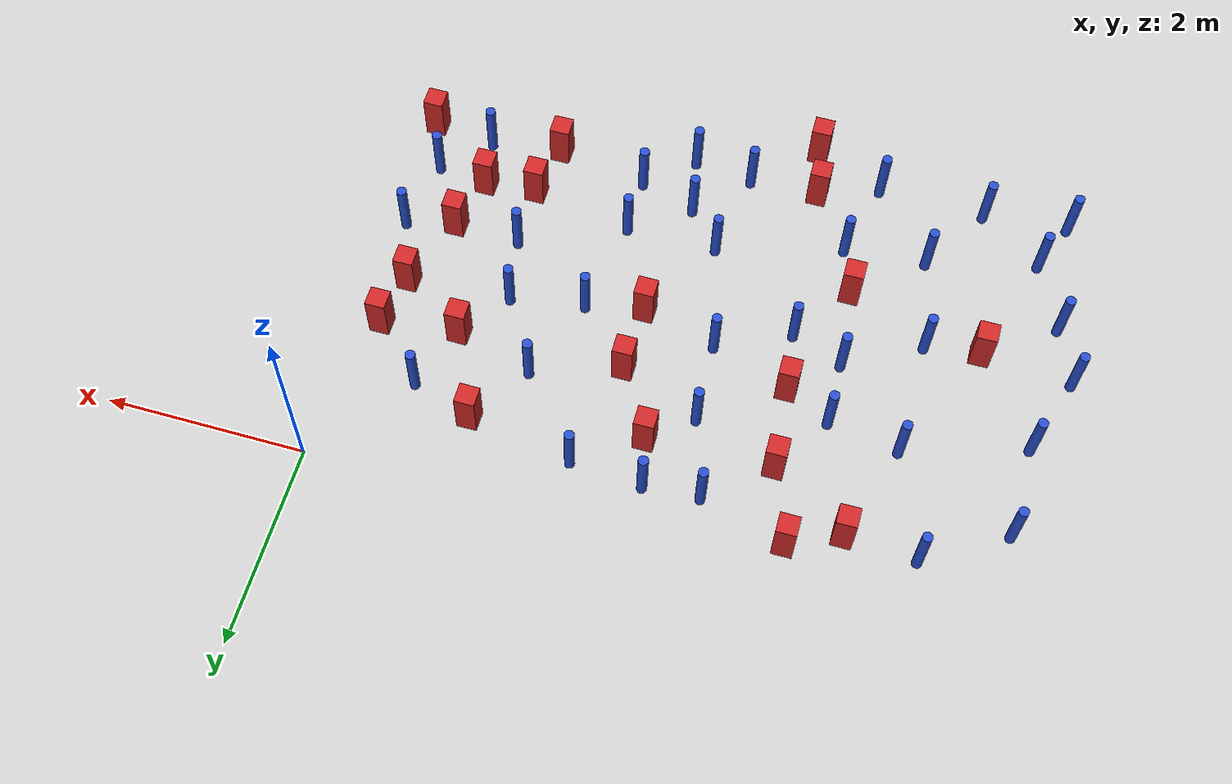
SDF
<sdf version="1.6">
 <world name="default">
  <model name="ground_plane">
   <static>1</static>
   <link name="link">
    <collision name="collision">
     <geometry><plane><normal>0 0 1</normal><size>100 100</size></plane></geometry>
     <surface><friction><ode><mu>100</mu><mu2>50</mu2></ode></friction></surface>
    </collision>
    <visual name="visual">
     <cast_shadows>0</cast_shadows>
     <geometry><plane><normal>0 0 1</normal><size>100 100</size></plane></geometry>
     <material>
      <ambient>1.0 1.0 1.0 1.0</ambient>
      <diffuse>0.8 0.8 0.8 1.0</diffuse>
      <specular>0.01 0.01 0.01 1.000000</specular>
     </material>
    </visual>
   </link>
  </model>
  <model name="pole_obstacle0">
   <static>true</static>
   <pose>-1.26318567252 -2.81914517885 -3.09024884793e-07 -7.19054271912e-07 -2.11315075132e-07 -1.93935509263e-07</pose>
   <link name="link">
    <pose>0 0 0.3 0 -0 0</pose>
    <inertial>
     <mass>1</mass>
     <inertia><ixx>0.145833</ixx><ixy>0</ixy><ixz>0</ixz><iyy>0.145833</iyy><iyz>0</iyz><izz>0.125</izz></inertia>
    </inertial>
    <collision name="collision">
     <geometry><cylinder><radius>0.05</radius><length>.6</length></cylinder></geometry>
    </collision>
    <visual name="visual">
     <geometry><cylinder><radius>0.05</radius><length>.6</length></cylinder></geometry>
     <material>
      <script><name>Gazebo/Blue</name><uri>file://media/materials/scripts/gazebo.material</uri></script>
     </material>
    </visual>
   </link>
  </model>
  <model name="square_post_obstacle12">
   <static>true</static>
   <pose>-0.249569324833 -1.54666862833 -4.36207812815e-07 3.75137919937e-06 9.77721102514e-07 2.47381364184e-05</pose>
   <link name="link">
    <pose>0 0 0.25 0 -0 0</pose>
    <inertial>
     <mass>100</mass>
     <inertia>
      <ixx>0.166667</ixx>
      <ixy>0</ixy>
      <ixz>0</ixz>
      <iyy>0.166667</iyy>
      <iyz>0</iyz>
      <izz>0.166667</izz>
     </inertia>
    </inertial>
    <collision name="collision"><geometry><box><size>.2 .2 .5</size></box></geometry></collision>
    <visual name="visual">
     <geometry><box><size>.2 .2 .5</size></box></geometry>
     <material>
      <script><name>Gazebo/Red</name><uri>file://media/materials/scripts/gazebo.material</uri></script>
     </material>
    </visual>
   </link>
  </model>
  <model name="pole_obstacle21">
   <static>true</static>
   <pose>-1.81135896532 -1.40149816478 -3.09024884793e-07 -7.19054271912e-07 -2.1131507513e-07 -1.93935509263e-07</pose>
   <link name="link">
    <pose>0 0 0.3 0 -0 0</pose>
    <inertial>
     <mass>1</mass>
     <inertia><ixx>0.145833</ixx><ixy>0</ixy><ixz>0</ixz><iyy>0.145833</iyy><iyz>0</iyz><izz>0.125</izz></inertia>
    </inertial>
    <collision name="collision">
     <geometry><cylinder><radius>0.05</radius><length>.6</length></cylinder></geometry>
    </collision>
    <visual name="visual">
     <geometry><cylinder><radius>0.05</radius><length>.6</length></cylinder></geometry>
     <material>
      <script><name>Gazebo/Blue</name><uri>file://media/materials/scripts/gazebo.material</uri></script>
     </material>
    </visual>
   </link>
  </model>
  <model name="pole_obstacle26">
   <static>true</static>
   <pose>-5.45418962079 -2.74201019903 -3.09024884793e-07 -7.19054271912e-07 -2.11315075144e-07 -1.93935509269e-07</pose>
   <link name="link">
    <pose>0 0 0.3 0 -0 0</pose>
    <inertial>
     <mass>1</mass>
     <inertia><ixx>0.145833</ixx><ixy>0</ixy><ixz>0</ixz><iyy>0.145833</iyy><iyz>0</iyz><izz>0.125</izz></inertia>
    </inertial>
    <collision name="collision">
     <geometry><cylinder><radius>0.05</radius><length>.6</length></cylinder></geometry>
    </collision>
    <visual name="visual">
     <geometry><cylinder><radius>0.05</radius><length>.6</length></cylinder></geometry>
     <material>
      <script><name>Gazebo/Blue</name><uri>file://media/materials/scripts/gazebo.material</uri></script>
     </material>
    </visual>
   </link>
  </model>
  <model name="pole_obstacle30">
   <static>true</static>
   <pose>-5.81181109801 -0.487479610291 -3.09024884793e-07 -7.19054271912e-07 -2.11315075121e-07 -1.93935509259e-07</pose>
   <link name="link">
    <pose>0 0 0.3 0 -0 0</pose>
    <inertial>
     <mass>1</mass>
     <inertia><ixx>0.145833</ixx><ixy>0</ixy><ixz>0</ixz><iyy>0.145833</iyy><iyz>0</iyz><izz>0.125</izz></inertia>
    </inertial>
    <collision name="collision">
     <geometry><cylinder><radius>0.05</radius><length>.6</length></cylinder></geometry>
    </collision>
    <visual name="visual">
     <geometry><cylinder><radius>0.05</radius><length>.6</length></cylinder></geometry>
     <material>
      <script><name>Gazebo/Blue</name><uri>file://media/materials/scripts/gazebo.material</uri></script>
     </material>
    </visual>
   </link>
  </model>
  <model name="pole_obstacle40">
   <static>true</static>
   <pose>-0.786801245384 -0.978945985038 -3.09024884793e-07 -7.19054271912e-07 -2.11315075136e-07 -1.93935509266e-07</pose>
   <link name="link">
    <pose>0 0 0.3 0 -0 0</pose>
    <inertial>
     <mass>1</mass>
     <inertia><ixx>0.145833</ixx><ixy>0</ixy><ixz>0</ixz><iyy>0.145833</iyy><iyz>0</iyz><izz>0.125</izz></inertia>
    </inertial>
    <collision name="collision">
     <geometry><cylinder><radius>0.05</radius><length>.6</length></cylinder></geometry>
    </collision>
    <visual name="visual">
     <geometry><cylinder><radius>0.05</radius><length>.6</length></cylinder></geometry>
     <material>
      <script><name>Gazebo/Blue</name><uri>file://media/materials/scripts/gazebo.material</uri></script>
     </material>
    </visual>
   </link>
  </model>
  <model name="pole_obstacle42">
   <static>true</static>
   <pose>-3.18935123623 -0.517845442793 -3.09024884793e-07 -7.19054271912e-07 -2.11315075119e-07 -1.93935509258e-07</pose>
   <link name="link">
    <pose>0 0 0.3 0 -0 0</pose>
    <inertial>
     <mass>1</mass>
     <inertia><ixx>0.145833</ixx><ixy>0</ixy><ixz>0</ixz><iyy>0.145833</iyy><iyz>0</iyz><izz>0.125</izz></inertia>
    </inertial>
    <collision name="collision">
     <geometry><cylinder><radius>0.05</radius><length>.6</length></cylinder></geometry>
    </collision>
    <visual name="visual">
     <geometry><cylinder><radius>0.05</radius><length>.6</length></cylinder></geometry>
     <material>
      <script><name>Gazebo/Blue</name><uri>file://media/materials/scripts/gazebo.material</uri></script>
     </material>
    </visual>
   </link>
  </model>
  <model name="pole_obstacle45">
   <static>true</static>
   <pose>-6.59601636118 -0.97188065447 -3.09024884793e-07 -7.19054271912e-07 -2.11315075132e-07 -1.93935509264e-07</pose>
   <link name="link">
    <pose>0 0 0.3 0 -0 0</pose>
    <inertial>
     <mass>1</mass>
     <inertia><ixx>0.145833</ixx><ixy>0</ixy><ixz>0</ixz><iyy>0.145833</iyy><iyz>0</iyz><izz>0.125</izz></inertia>
    </inertial>
    <collision name="collision">
     <geometry><cylinder><radius>0.05</radius><length>.6</length></cylinder></geometry>
    </collision>
    <visual name="visual">
     <geometry><cylinder><radius>0.05</radius><length>.6</length></cylinder></geometry>
     <material>
      <script><name>Gazebo/Blue</name><uri>file://media/materials/scripts/gazebo.material</uri></script>
     </material>
    </visual>
   </link>
  </model>
  <model name="square_post_obstacle46">
   <static>true</static>
   <pose>-4.06028209793 -4.24305204568 -4.36207812815e-07 3.75137919937e-06 9.77721102514e-07 2.47381364184e-05</pose>
   <link name="link">
    <pose>0 0 0.25 0 -0 0</pose>
    <inertial>
     <mass>100</mass>
     <inertia>
      <ixx>0.166667</ixx>
      <ixy>0</ixy>
      <ixz>0</ixz>
      <iyy>0.166667</iyy>
      <iyz>0</iyz>
      <izz>0.166667</izz>
     </inertia>
    </inertial>
    <collision name="collision"><geometry><box><size>.2 .2 .5</size></box></geometry></collision>
    <visual name="visual">
     <geometry><box><size>.2 .2 .5</size></box></geometry>
     <material>
      <script><name>Gazebo/Red</name><uri>file://media/materials/scripts/gazebo.material</uri></script>
     </material>
    </visual>
   </link>
  </model>
  <model name="pole_obstacle46">
   <static>true</static>
   <pose>-4.46850322387 -3.64393652636 -3.09024884793e-07 -7.19054271912e-07 -2.11315075144e-07 -1.93935509269e-07</pose>
   <link name="link">
    <pose>0 0 0.3 0 -0 0</pose>
    <inertial>
     <mass>1</mass>
     <inertia><ixx>0.145833</ixx><ixy>0</ixy><ixz>0</ixz><iyy>0.145833</iyy><iyz>0</iyz><izz>0.125</izz></inertia>
    </inertial>
    <collision name="collision">
     <geometry><cylinder><radius>0.05</radius><length>.6</length></cylinder></geometry>
    </collision>
    <visual name="visual">
     <geometry><cylinder><radius>0.05</radius><length>.6</length></cylinder></geometry>
     <material>
      <script><name>Gazebo/Blue</name><uri>file://media/materials/scripts/gazebo.material</uri></script>
     </material>
    </visual>
   </link>
  </model>
  <model name="square_post_obstacle60">
   <static>true</static>
   <pose>-2.71421768521 -2.39118042716 -4.36207812815e-07 3.75137919937e-06 9.77721102514e-07 2.47381364184e-05</pose>
   <link name="link">
    <pose>0 0 0.25 0 -0 0</pose>
    <inertial>
     <mass>100</mass>
     <inertia>
      <ixx>0.166667</ixx>
      <ixy>0</ixy>
      <ixz>0</ixz>
      <iyy>0.166667</iyy>
      <iyz>0</iyz>
      <izz>0.166667</izz>
     </inertia>
    </inertial>
    <collision name="collision"><geometry><box><size>.2 .2 .5</size></box></geometry></collision>
    <visual name="visual">
     <geometry><box><size>.2 .2 .5</size></box></geometry>
     <material>
      <script><name>Gazebo/Red</name><uri>file://media/materials/scripts/gazebo.material</uri></script>
     </material>
    </visual>
   </link>
  </model>
  <model name="pole_obstacle57">
   <static>true</static>
   <pose>-2.28913307424 -3.2868774571 -3.09024884793e-07 -7.19054271912e-07 -2.11315075144e-07 -1.93935509271e-07</pose>
   <link name="link">
    <pose>0 0 0.3 0 -0 0</pose>
    <inertial>
     <mass>1</mass>
     <inertia><ixx>0.145833</ixx><ixy>0</ixy><ixz>0</ixz><iyy>0.145833</iyy><iyz>0</iyz><izz>0.125</izz></inertia>
    </inertial>
    <collision name="collision">
     <geometry><cylinder><radius>0.05</radius><length>.6</length></cylinder></geometry>
    </collision>
    <visual name="visual">
     <geometry><cylinder><radius>0.05</radius><length>.6</length></cylinder></geometry>
     <material>
      <script><name>Gazebo/Blue</name><uri>file://media/materials/scripts/gazebo.material</uri></script>
     </material>
    </visual>
   </link>
  </model>
  <model name="pole_obstacle62">
   <static>true</static>
   <pose>-6.38536758963 -3.98996949735 -3.09024884793e-07 -7.19054271912e-07 -2.11315075139e-07 -1.93935509266e-07</pose>
   <link name="link">
    <pose>0 0 0.3 0 -0 0</pose>
    <inertial>
     <mass>1</mass>
     <inertia><ixx>0.145833</ixx><ixy>0</ixy><ixz>0</ixz><iyy>0.145833</iyy><iyz>0</iyz><izz>0.125</izz></inertia>
    </inertial>
    <collision name="collision">
     <geometry><cylinder><radius>0.05</radius><length>.6</length></cylinder></geometry>
    </collision>
    <visual name="visual">
     <geometry><cylinder><radius>0.05</radius><length>.6</length></cylinder></geometry>
     <material>
      <script><name>Gazebo/Blue</name><uri>file://media/materials/scripts/gazebo.material</uri></script>
     </material>
    </visual>
   </link>
  </model>
  <model name="square_post_obstacle64">
   <static>true</static>
   <pose>-0.59490838196 -2.85342368342 -4.36207812815e-07 3.75137919937e-06 9.77721102514e-07 2.47381364184e-05</pose>
   <link name="link">
    <pose>0 0 0.25 0 -0 0</pose>
    <inertial>
     <mass>100</mass>
     <inertia>
      <ixx>0.166667</ixx>
      <ixy>0</ixy>
      <ixz>0</ixz>
      <iyy>0.166667</iyy>
      <iyz>0</iyz>
      <izz>0.166667</izz>
     </inertia>
    </inertial>
    <collision name="collision"><geometry><box><size>.2 .2 .5</size></box></geometry></collision>
    <visual name="visual">
     <geometry><box><size>.2 .2 .5</size></box></geometry>
     <material>
      <script><name>Gazebo/Red</name><uri>file://media/materials/scripts/gazebo.material</uri></script>
     </material>
    </visual>
   </link>
  </model>
  <model name="square_post_obstacle67">
   <static>true</static>
   <pose>-2.68714245492 -1.70114892954 -4.36207812815e-07 3.75137919937e-06 9.77721102514e-07 2.47381364184e-05</pose>
   <link name="link">
    <pose>0 0 0.25 0 -0 0</pose>
    <inertial>
     <mass>100</mass>
     <inertia>
      <ixx>0.166667</ixx>
      <ixy>0</ixy>
      <ixz>0</ixz>
      <iyy>0.166667</iyy>
      <iyz>0</iyz>
      <izz>0.166667</izz>
     </inertia>
    </inertial>
    <collision name="collision"><geometry><box><size>.2 .2 .5</size></box></geometry></collision>
    <visual name="visual">
     <geometry><box><size>.2 .2 .5</size></box></geometry>
     <material>
      <script><name>Gazebo/Red</name><uri>file://media/materials/scripts/gazebo.material</uri></script>
     </material>
    </visual>
   </link>
  </model>
  <model name="pole_obstacle78">
   <static>true</static>
   <pose>-3.21100394884 -3.29040563942 -3.09024884793e-07 -7.19054271912e-07 -2.11315075144e-07 -1.93935509271e-07</pose>
   <link name="link">
    <pose>0 0 0.3 0 -0 0</pose>
    <inertial>
     <mass>1</mass>
     <inertia><ixx>0.145833</ixx><ixy>0</ixy><ixz>0</ixz><iyy>0.145833</iyy><iyz>0</iyz><izz>0.125</izz></inertia>
    </inertial>
    <collision name="collision">
     <geometry><cylinder><radius>0.05</radius><length>.6</length></cylinder></geometry>
    </collision>
    <visual name="visual">
     <geometry><cylinder><radius>0.05</radius><length>.6</length></cylinder></geometry>
     <material>
      <script><name>Gazebo/Blue</name><uri>file://media/materials/scripts/gazebo.material</uri></script>
     </material>
    </visual>
   </link>
  </model>
  <model name="pole_obstacle79">
   <static>true</static>
   <pose>-3.74435428611 -0.555962126052 -3.09024884793e-07 -7.19054271912e-07 -2.11315075162e-07 -1.93935509281e-07</pose>
   <link name="link">
    <pose>0 0 0.3 0 -0 0</pose>
    <inertial>
     <mass>1</mass>
     <inertia><ixx>0.145833</ixx><ixy>0</ixy><ixz>0</ixz><iyy>0.145833</iyy><iyz>0</iyz><izz>0.125</izz></inertia>
    </inertial>
    <collision name="collision">
     <geometry><cylinder><radius>0.05</radius><length>.6</length></cylinder></geometry>
    </collision>
    <visual name="visual">
     <geometry><cylinder><radius>0.05</radius><length>.6</length></cylinder></geometry>
     <material>
      <script><name>Gazebo/Blue</name><uri>file://media/materials/scripts/gazebo.material</uri></script>
     </material>
    </visual>
   </link>
  </model>
  <model name="square_post_obstacle79">
   <static>true</static>
   <pose>-1.41012855797 -0.770628693395 -4.36207812815e-07 3.75137919937e-06 9.77721102514e-07 2.47381364184e-05</pose>
   <link name="link">
    <pose>0 0 0.25 0 -0 0</pose>
    <inertial>
     <mass>100</mass>
     <inertia>
      <ixx>0.166667</ixx>
      <ixy>0</ixy>
      <ixz>0</ixz>
      <iyy>0.166667</iyy>
      <iyz>0</iyz>
      <izz>0.166667</izz>
     </inertia>
    </inertial>
    <collision name="collision"><geometry><box><size>.2 .2 .5</size></box></geometry></collision>
    <visual name="visual">
     <geometry><box><size>.2 .2 .5</size></box></geometry>
     <material>
      <script><name>Gazebo/Red</name><uri>file://media/materials/scripts/gazebo.material</uri></script>
     </material>
    </visual>
   </link>
  </model>
  <model name="pole_obstacle80">
   <static>true</static>
   <pose>-6.90337086929 -2.71978737116 -3.09024884793e-07 -7.19054271912e-07 -2.11315075144e-07 -1.93935509269e-07</pose>
   <link name="link">
    <pose>0 0 0.3 0 -0 0</pose>
    <inertial>
     <mass>1</mass>
     <inertia><ixx>0.145833</ixx><ixy>0</ixy><ixz>0</ixz><iyy>0.145833</iyy><iyz>0</iyz><izz>0.125</izz></inertia>
    </inertial>
    <collision name="collision">
     <geometry><cylinder><radius>0.05</radius><length>.6</length></cylinder></geometry>
    </collision>
    <visual name="visual">
     <geometry><cylinder><radius>0.05</radius><length>.6</length></cylinder></geometry>
     <material>
      <script><name>Gazebo/Blue</name><uri>file://media/materials/scripts/gazebo.material</uri></script>
     </material>
    </visual>
   </link>
  </model>
  <model name="pole_obstacle82">
   <static>true</static>
   <pose>-4.72213790837 -1.66277761515 -3.09024884793e-07 -7.19054271912e-07 -2.11315075124e-07 -1.93935509261e-07</pose>
   <link name="link">
    <pose>0 0 0.3 0 -0 0</pose>
    <inertial>
     <mass>1</mass>
     <inertia><ixx>0.145833</ixx><ixy>0</ixy><ixz>0</ixz><iyy>0.145833</iyy><iyz>0</iyz><izz>0.125</izz></inertia>
    </inertial>
    <collision name="collision">
     <geometry><cylinder><radius>0.05</radius><length>.6</length></cylinder></geometry>
    </collision>
    <visual name="visual">
     <geometry><cylinder><radius>0.05</radius><length>.6</length></cylinder></geometry>
     <material>
      <script><name>Gazebo/Blue</name><uri>file://media/materials/scripts/gazebo.material</uri></script>
     </material>
    </visual>
   </link>
  </model>
  <model name="square_post_obstacle81">
   <static>true</static>
   <pose>-5.99834481467 -2.81276139893 -4.36207812815e-07 3.75137919937e-06 9.77721102514e-07 2.47381364184e-05</pose>
   <link name="link">
    <pose>0 0 0.25 0 -0 0</pose>
    <inertial>
     <mass>100</mass>
     <inertia>
      <ixx>0.166667</ixx>
      <ixy>0</ixy>
      <ixz>0</ixz>
      <iyy>0.166667</iyy>
      <iyz>0</iyz>
      <izz>0.166667</izz>
     </inertia>
    </inertial>
    <collision name="collision"><geometry><box><size>.2 .2 .5</size></box></geometry></collision>
    <visual name="visual">
     <geometry><box><size>.2 .2 .5</size></box></geometry>
     <material>
      <script><name>Gazebo/Red</name><uri>file://media/materials/scripts/gazebo.material</uri></script>
     </material>
    </visual>
   </link>
  </model>
  <model name="pole_obstacle90">
   <static>true</static>
   <pose>-2.86996150033 -3.69251503462 -3.09024884793e-07 -7.19054271912e-07 -2.11315075144e-07 -1.93935509271e-07</pose>
   <link name="link">
    <pose>0 0 0.3 0 -0 0</pose>
    <inertial>
     <mass>1</mass>
     <inertia><ixx>0.145833</ixx><ixy>0</ixy><ixz>0</ixz><iyy>0.145833</iyy><iyz>0</iyz><izz>0.125</izz></inertia>
    </inertial>
    <collision name="collision">
     <geometry><cylinder><radius>0.05</radius><length>.6</length></cylinder></geometry>
    </collision>
    <visual name="visual">
     <geometry><cylinder><radius>0.05</radius><length>.6</length></cylinder></geometry>
     <material>
      <script><name>Gazebo/Blue</name><uri>file://media/materials/scripts/gazebo.material</uri></script>
     </material>
    </visual>
   </link>
  </model>
  <model name="pole_obstacle93">
   <static>true</static>
   <pose>-3.46970339199 -2.17495013816 -3.09024884793e-07 -7.19054271912e-07 -2.11315075144e-07 -1.93935509271e-07</pose>
   <link name="link">
    <pose>0 0 0.3 0 -0 0</pose>
    <inertial>
     <mass>1</mass>
     <inertia><ixx>0.145833</ixx><ixy>0</ixy><ixz>0</ixz><iyy>0.145833</iyy><iyz>0</iyz><izz>0.125</izz></inertia>
    </inertial>
    <collision name="collision">
     <geometry><cylinder><radius>0.05</radius><length>.6</length></cylinder></geometry>
    </collision>
    <visual name="visual">
     <geometry><cylinder><radius>0.05</radius><length>.6</length></cylinder></geometry>
     <material>
      <script><name>Gazebo/Blue</name><uri>file://media/materials/scripts/gazebo.material</uri></script>
     </material>
    </visual>
   </link>
  </model>
  <model name="square_post_obstacle84">
   <static>true</static>
   <pose>-1.37050281096 -4.04149142829 -4.36207812815e-07 3.75137919937e-06 9.77721102514e-07 2.47381364184e-05</pose>
   <link name="link">
    <pose>0 0 0.25 0 -0 0</pose>
    <inertial>
     <mass>100</mass>
     <inertia>
      <ixx>0.166667</ixx>
      <ixy>0</ixy>
      <ixz>0</ixz>
      <iyy>0.166667</iyy>
      <iyz>0</iyz>
      <izz>0.166667</izz>
     </inertia>
    </inertial>
    <collision name="collision"><geometry><box><size>.2 .2 .5</size></box></geometry></collision>
    <visual name="visual">
     <geometry><box><size>.2 .2 .5</size></box></geometry>
     <material>
      <script><name>Gazebo/Red</name><uri>file://media/materials/scripts/gazebo.material</uri></script>
     </material>
    </visual>
   </link>
  </model>
  <model name="pole_obstacle99">
   <static>true</static>
   <pose>-5.43192042556 -1.54460538225 -3.09024884793e-07 -7.19054271912e-07 -2.11315075124e-07 -1.93935509261e-07</pose>
   <link name="link">
    <pose>0 0 0.3 0 -0 0</pose>
    <inertial>
     <mass>1</mass>
     <inertia><ixx>0.145833</ixx><ixy>0</ixy><ixz>0</ixz><iyy>0.145833</iyy><iyz>0</iyz><izz>0.125</izz></inertia>
    </inertial>
    <collision name="collision">
     <geometry><cylinder><radius>0.05</radius><length>.6</length></cylinder></geometry>
    </collision>
    <visual name="visual">
     <geometry><cylinder><radius>0.05</radius><length>.6</length></cylinder></geometry>
     <material>
      <script><name>Gazebo/Blue</name><uri>file://media/materials/scripts/gazebo.material</uri></script>
     </material>
    </visual>
   </link>
  </model>
  <model name="square_post_obstacle92">
   <static>true</static>
   <pose>-0.00912165835378 -4.02344593252 -4.36207812815e-07 3.75137919937e-06 9.77721102514e-07 2.47381364184e-05</pose>
   <link name="link">
    <pose>0 0 0.25 0 -0 0</pose>
    <inertial>
     <mass>100</mass>
     <inertia>
      <ixx>0.166667</ixx>
      <ixy>0</ixy>
      <ixz>0</ixz>
      <iyy>0.166667</iyy>
      <iyz>0</iyz>
      <izz>0.166667</izz>
     </inertia>
    </inertial>
    <collision name="collision"><geometry><box><size>.2 .2 .5</size></box></geometry></collision>
    <visual name="visual">
     <geometry><box><size>.2 .2 .5</size></box></geometry>
     <material>
      <script><name>Gazebo/Red</name><uri>file://media/materials/scripts/gazebo.material</uri></script>
     </material>
    </visual>
   </link>
  </model>
  <model name="square_post_obstacle98">
   <static>true</static>
   <pose>-3.08544947198 -1.00972574196 -4.36207812815e-07 3.75137919937e-06 9.77721102514e-07 2.47381364184e-05</pose>
   <link name="link">
    <pose>0 0 0.25 0 -0 0</pose>
    <inertial>
     <mass>100</mass>
     <inertia>
      <ixx>0.166667</ixx>
      <ixy>0</ixy>
      <ixz>0</ixz>
      <iyy>0.166667</iyy>
      <iyz>0</iyz>
      <izz>0.166667</izz>
     </inertia>
    </inertial>
    <collision name="collision"><geometry><box><size>.2 .2 .5</size></box></geometry></collision>
    <visual name="visual">
     <geometry><box><size>.2 .2 .5</size></box></geometry>
     <material>
      <script><name>Gazebo/Red</name><uri>file://media/materials/scripts/gazebo.material</uri></script>
     </material>
    </visual>
   </link>
  </model>
  <model name="square_post_obstacle100">
   <static>true</static>
   <pose>-4.59765389956 -0.313582957355 -4.36207812815e-07 3.75137919937e-06 9.77721102514e-07 2.47381364184e-05</pose>
   <link name="link">
    <pose>0 0 0.25 0 -0 0</pose>
    <inertial>
     <mass>100</mass>
     <inertia>
      <ixx>0.166667</ixx>
      <ixy>0</ixy>
      <ixz>0</ixz>
      <iyy>0.166667</iyy>
      <iyz>0</iyz>
      <izz>0.166667</izz>
     </inertia>
    </inertial>
    <collision name="collision"><geometry><box><size>.2 .2 .5</size></box></geometry></collision>
    <visual name="visual">
     <geometry><box><size>.2 .2 .5</size></box></geometry>
     <material>
      <script><name>Gazebo/Red</name><uri>file://media/materials/scripts/gazebo.material</uri></script>
     </material>
    </visual>
   </link>
  </model>
  <model name="square_post_obstacle104">
   <static>true</static>
   <pose>-1.02329789723 -1.64470426504 -4.36207812815e-07 3.75137919937e-06 9.77721102514e-07 2.47381364184e-05</pose>
   <link name="link">
    <pose>0 0 0.25 0 -0 0</pose>
    <inertial>
     <mass>100</mass>
     <inertia>
      <ixx>0.166667</ixx>
      <ixy>0</ixy>
      <ixz>0</ixz>
      <iyy>0.166667</iyy>
      <iyz>0</iyz>
      <izz>0.166667</izz>
     </inertia>
    </inertial>
    <collision name="collision"><geometry><box><size>.2 .2 .5</size></box></geometry></collision>
    <visual name="visual">
     <geometry><box><size>.2 .2 .5</size></box></geometry>
     <material>
      <script><name>Gazebo/Red</name><uri>file://media/materials/scripts/gazebo.material</uri></script>
     </material>
    </visual>
   </link>
  </model>
  <model name="pole_obstacle119">
   <static>true</static>
   <pose>-5.75260434091 -4.43951170691 -3.09024884793e-07 -7.19054271911e-07 -2.1131507516e-07 -1.93935509277e-07</pose>
   <link name="link">
    <pose>0 0 0.3 0 -0 0</pose>
    <inertial>
     <mass>1</mass>
     <inertia><ixx>0.145833</ixx><ixy>0</ixy><ixz>0</ixz><iyy>0.145833</iyy><iyz>0</iyz><izz>0.125</izz></inertia>
    </inertial>
    <collision name="collision">
     <geometry><cylinder><radius>0.05</radius><length>.6</length></cylinder></geometry>
    </collision>
    <visual name="visual">
     <geometry><cylinder><radius>0.05</radius><length>.6</length></cylinder></geometry>
     <material>
      <script><name>Gazebo/Blue</name><uri>file://media/materials/scripts/gazebo.material</uri></script>
     </material>
    </visual>
   </link>
  </model>
  <model name="square_post_obstacle108">
   <static>true</static>
   <pose>-0.735844964907 -3.4278562185 -4.36207812815e-07 3.75137919937e-06 9.77721102514e-07 2.47381364184e-05</pose>
   <link name="link">
    <pose>0 0 0.25 0 -0 0</pose>
    <inertial>
     <mass>100</mass>
     <inertia>
      <ixx>0.166667</ixx>
      <ixy>0</ixy>
      <ixz>0</ixz>
      <iyy>0.166667</iyy>
      <iyz>0</iyz>
      <izz>0.166667</izz>
     </inertia>
    </inertial>
    <collision name="collision"><geometry><box><size>.2 .2 .5</size></box></geometry></collision>
    <visual name="visual">
     <geometry><box><size>.2 .2 .5</size></box></geometry>
     <material>
      <script><name>Gazebo/Red</name><uri>file://media/materials/scripts/gazebo.material</uri></script>
     </material>
    </visual>
   </link>
  </model>
  <model name="pole_obstacle121">
   <static>true</static>
   <pose>-4.19042745047 -2.52166877256 -3.09024884793e-07 -7.19054271912e-07 -2.11315075144e-07 -1.93935509269e-07</pose>
   <link name="link">
    <pose>0 0 0.3 0 -0 0</pose>
    <inertial>
     <mass>1</mass>
     <inertia><ixx>0.145833</ixx><ixy>0</ixy><ixz>0</ixz><iyy>0.145833</iyy><iyz>0</iyz><izz>0.125</izz></inertia>
    </inertial>
    <collision name="collision">
     <geometry><cylinder><radius>0.05</radius><length>.6</length></cylinder></geometry>
    </collision>
    <visual name="visual">
     <geometry><cylinder><radius>0.05</radius><length>.6</length></cylinder></geometry>
     <material>
      <script><name>Gazebo/Blue</name><uri>file://media/materials/scripts/gazebo.material</uri></script>
     </material>
    </visual>
   </link>
  </model>
  <model name="pole_obstacle125">
   <static>true</static>
   <pose>-0.210018591123 -3.49128582503 -3.09024884848e-07 -7.19054271902e-07 -2.11315075205e-07 -1.93935509288e-07</pose>
   <link name="link">
    <pose>0 0 0.3 0 -0 0</pose>
    <inertial>
     <mass>1</mass>
     <inertia><ixx>0.145833</ixx><ixy>0</ixy><ixz>0</ixz><iyy>0.145833</iyy><iyz>0</iyz><izz>0.125</izz></inertia>
    </inertial>
    <collision name="collision">
     <geometry><cylinder><radius>0.05</radius><length>.6</length></cylinder></geometry>
    </collision>
    <visual name="visual">
     <geometry><cylinder><radius>0.05</radius><length>.6</length></cylinder></geometry>
     <material>
      <script><name>Gazebo/Blue</name><uri>file://media/materials/scripts/gazebo.material</uri></script>
     </material>
    </visual>
   </link>
  </model>
  <model name="pole_obstacle126">
   <static>true</static>
   <pose>-3.50353557605 -1.34882628812 -3.09024884793e-07 -7.19054271912e-07 -2.11315075122e-07 -1.93935509259e-07</pose>
   <link name="link">
    <pose>0 0 0.3 0 -0 0</pose>
    <inertial>
     <mass>1</mass>
     <inertia><ixx>0.145833</ixx><ixy>0</ixy><ixz>0</ixz><iyy>0.145833</iyy><iyz>0</iyz><izz>0.125</izz></inertia>
    </inertial>
    <collision name="collision">
     <geometry><cylinder><radius>0.05</radius><length>.6</length></cylinder></geometry>
    </collision>
    <visual name="visual">
     <geometry><cylinder><radius>0.05</radius><length>.6</length></cylinder></geometry>
     <material>
      <script><name>Gazebo/Blue</name><uri>file://media/materials/scripts/gazebo.material</uri></script>
     </material>
    </visual>
   </link>
  </model>
  <model name="square_post_obstacle113">
   <static>true</static>
   <pose>-5.10279385934 -0.547636399344 -4.36207812815e-07 3.75137919937e-06 9.77721102514e-07 2.47381364184e-05</pose>
   <link name="link">
    <pose>0 0 0.25 0 -0 0</pose>
    <inertial>
     <mass>100</mass>
     <inertia>
      <ixx>0.166667</ixx>
      <ixy>0</ixy>
      <ixz>0</ixz>
      <iyy>0.166667</iyy>
      <iyz>0</iyz>
      <izz>0.166667</izz>
     </inertia>
    </inertial>
    <collision name="collision"><geometry><box><size>.2 .2 .5</size></box></geometry></collision>
    <visual name="visual">
     <geometry><box><size>.2 .2 .5</size></box></geometry>
     <material>
      <script><name>Gazebo/Red</name><uri>file://media/materials/scripts/gazebo.material</uri></script>
     </material>
    </visual>
   </link>
  </model>
  <model name="pole_obstacle130">
   <static>true</static>
   <pose>-0.0915434971533 -2.73517778135 -3.09024884793e-07 -7.19054271912e-07 -2.11315075128e-07 -1.93935509262e-07</pose>
   <link name="link">
    <pose>0 0 0.3 0 -0 0</pose>
    <inertial>
     <mass>1</mass>
     <inertia><ixx>0.145833</ixx><ixy>0</ixy><ixz>0</ixz><iyy>0.145833</iyy><iyz>0</iyz><izz>0.125</izz></inertia>
    </inertial>
    <collision name="collision">
     <geometry><cylinder><radius>0.05</radius><length>.6</length></cylinder></geometry>
    </collision>
    <visual name="visual">
     <geometry><cylinder><radius>0.05</radius><length>.6</length></cylinder></geometry>
     <material>
      <script><name>Gazebo/Blue</name><uri>file://media/materials/scripts/gazebo.material</uri></script>
     </material>
    </visual>
   </link>
  </model>
  <model name="pole_obstacle144">
   <static>true</static>
   <pose>-1.3866822831 -2.1524621092 -3.09024884793e-07 -7.19054271912e-07 -2.11315075132e-07 -1.93935509263e-07</pose>
   <link name="link">
    <pose>0 0 0.3 0 -0 0</pose>
    <inertial>
     <mass>1</mass>
     <inertia><ixx>0.145833</ixx><ixy>0</ixy><ixz>0</ixz><iyy>0.145833</iyy><iyz>0</iyz><izz>0.125</izz></inertia>
    </inertial>
    <collision name="collision">
     <geometry><cylinder><radius>0.05</radius><length>.6</length></cylinder></geometry>
    </collision>
    <visual name="visual">
     <geometry><cylinder><radius>0.05</radius><length>.6</length></cylinder></geometry>
     <material>
      <script><name>Gazebo/Blue</name><uri>file://media/materials/scripts/gazebo.material</uri></script>
     </material>
    </visual>
   </link>
  </model>
  <model name="square_post_obstacle137">
   <static>true</static>
   <pose>-4.6285056537 -3.15791258627 -4.36207812815e-07 3.75137919937e-06 9.77721102514e-07 2.47381364184e-05</pose>
   <link name="link">
    <pose>0 0 0.25 0 -0 0</pose>
    <inertial>
     <mass>100</mass>
     <inertia>
      <ixx>0.166667</ixx>
      <ixy>0</ixy>
      <ixz>0</ixz>
      <iyy>0.166667</iyy>
      <iyz>0</iyz>
      <izz>0.166667</izz>
     </inertia>
    </inertial>
    <collision name="collision"><geometry><box><size>.2 .2 .5</size></box></geometry></collision>
    <visual name="visual">
     <geometry><box><size>.2 .2 .5</size></box></geometry>
     <material>
      <script><name>Gazebo/Red</name><uri>file://media/materials/scripts/gazebo.material</uri></script>
     </material>
    </visual>
   </link>
  </model>
  <model name="pole_obstacle151">
   <static>true</static>
   <pose>-4.71002146107 -2.31549151839 -3.09024884793e-07 -7.19054271912e-07 -2.11315075144e-07 -1.93935509269e-07</pose>
   <link name="link">
    <pose>0 0 0.3 0 -0 0</pose>
    <inertial>
     <mass>1</mass>
     <inertia><ixx>0.145833</ixx><ixy>0</ixy><ixz>0</ixz><iyy>0.145833</iyy><iyz>0</iyz><izz>0.125</izz></inertia>
    </inertial>
    <collision name="collision">
     <geometry><cylinder><radius>0.05</radius><length>.6</length></cylinder></geometry>
    </collision>
    <visual name="visual">
     <geometry><cylinder><radius>0.05</radius><length>.6</length></cylinder></geometry>
     <material>
      <script><name>Gazebo/Blue</name><uri>file://media/materials/scripts/gazebo.material</uri></script>
     </material>
    </visual>
   </link>
  </model>
  <model name="pole_obstacle153">
   <static>true</static>
   <pose>-2.29384918771 -3.87733113665 -3.09024884793e-07 -7.19054271912e-07 -2.11315075144e-07 -1.93935509271e-07</pose>
   <link name="link">
    <pose>0 0 0.3 0 -0 0</pose>
    <inertial>
     <mass>1</mass>
     <inertia><ixx>0.145833</ixx><ixy>0</ixy><ixz>0</ixz><iyy>0.145833</iyy><iyz>0</iyz><izz>0.125</izz></inertia>
    </inertial>
    <collision name="collision">
     <geometry><cylinder><radius>0.05</radius><length>.6</length></cylinder></geometry>
    </collision>
    <visual name="visual">
     <geometry><cylinder><radius>0.05</radius><length>.6</length></cylinder></geometry>
     <material>
      <script><name>Gazebo/Blue</name><uri>file://media/materials/scripts/gazebo.material</uri></script>
     </material>
    </visual>
   </link>
  </model>
  <model name="pole_obstacle154">
   <static>true</static>
   <pose>-2.13008649381 -2.27671192621 -3.09024884793e-07 -7.19054271912e-07 -2.11315075144e-07 -1.93935509271e-07</pose>
   <link name="link">
    <pose>0 0 0.3 0 -0 0</pose>
    <inertial>
     <mass>1</mass>
     <inertia><ixx>0.145833</ixx><ixy>0</ixy><ixz>0</ixz><iyy>0.145833</iyy><iyz>0</iyz><izz>0.125</izz></inertia>
    </inertial>
    <collision name="collision">
     <geometry><cylinder><radius>0.05</radius><length>.6</length></cylinder></geometry>
    </collision>
    <visual name="visual">
     <geometry><cylinder><radius>0.05</radius><length>.6</length></cylinder></geometry>
     <material>
      <script><name>Gazebo/Blue</name><uri>file://media/materials/scripts/gazebo.material</uri></script>
     </material>
    </visual>
   </link>
  </model>
  <model name="pole_obstacle155">
   <static>true</static>
   <pose>-2.76282810917 -4.28904117573 -3.09024884793e-07 -7.19054271912e-07 -2.11315075134e-07 -1.93935509266e-07</pose>
   <link name="link">
    <pose>0 0 0.3 0 -0 0</pose>
    <inertial>
     <mass>1</mass>
     <inertia><ixx>0.145833</ixx><ixy>0</ixy><ixz>0</ixz><iyy>0.145833</iyy><iyz>0</iyz><izz>0.125</izz></inertia>
    </inertial>
    <collision name="collision">
     <geometry><cylinder><radius>0.05</radius><length>.6</length></cylinder></geometry>
    </collision>
    <visual name="visual">
     <geometry><cylinder><radius>0.05</radius><length>.6</length></cylinder></geometry>
     <material>
      <script><name>Gazebo/Blue</name><uri>file://media/materials/scripts/gazebo.material</uri></script>
     </material>
    </visual>
   </link>
  </model>
  <model name="square_post_obstacle149">
   <static>true</static>
   <pose>-3.96365013436 -4.77061449526 -4.36207812815e-07 3.75137919937e-06 9.77721102514e-07 2.47381364184e-05</pose>
   <link name="link">
    <pose>0 0 0.25 0 -0 0</pose>
    <inertial>
     <mass>100</mass>
     <inertia>
      <ixx>0.166667</ixx>
      <ixy>0</ixy>
      <ixz>0</ixz>
      <iyy>0.166667</iyy>
      <iyz>0</iyz>
      <izz>0.166667</izz>
     </inertia>
    </inertial>
    <collision name="collision"><geometry><box><size>.2 .2 .5</size></box></geometry></collision>
    <visual name="visual">
     <geometry><box><size>.2 .2 .5</size></box></geometry>
     <material>
      <script><name>Gazebo/Red</name><uri>file://media/materials/scripts/gazebo.material</uri></script>
     </material>
    </visual>
   </link>
  </model>
  <model name="square_post_obstacle155">
   <static>true</static>
   <pose>-0.345398942389 -2.08750085652 -4.36207812815e-07 3.75137919937e-06 9.77721102514e-07 2.47381364184e-05</pose>
   <link name="link">
    <pose>0 0 0.25 0 -0 0</pose>
    <inertial>
     <mass>100</mass>
     <inertia>
      <ixx>0.166667</ixx>
      <ixy>0</ixy>
      <ixz>0</ixz>
      <iyy>0.166667</iyy>
      <iyz>0</iyz>
      <izz>0.166667</izz>
     </inertia>
    </inertial>
    <collision name="collision"><geometry><box><size>.2 .2 .5</size></box></geometry></collision>
    <visual name="visual">
     <geometry><box><size>.2 .2 .5</size></box></geometry>
     <material>
      <script><name>Gazebo/Red</name><uri>file://media/materials/scripts/gazebo.material</uri></script>
     </material>
    </visual>
   </link>
  </model>
  <model name="pole_obstacle166">
   <static>true</static>
   <pose>-5.2907031035 -3.71173586622 -3.09024884793e-07 -7.19054271912e-07 -2.11315075144e-07 -1.93935509269e-07</pose>
   <link name="link">
    <pose>0 0 0.3 0 -0 0</pose>
    <inertial>
     <mass>1</mass>
     <inertia><ixx>0.145833</ixx><ixy>0</ixy><ixz>0</ixz><iyy>0.145833</iyy><iyz>0</iyz><izz>0.125</izz></inertia>
    </inertial>
    <collision name="collision">
     <geometry><cylinder><radius>0.05</radius><length>.6</length></cylinder></geometry>
    </collision>
    <visual name="visual">
     <geometry><cylinder><radius>0.05</radius><length>.6</length></cylinder></geometry>
     <material>
      <script><name>Gazebo/Blue</name><uri>file://media/materials/scripts/gazebo.material</uri></script>
     </material>
    </visual>
   </link>
  </model>
  <model name="square_post_obstacle158">
   <static>true</static>
   <pose>-4.33565859066 -1.0614435353 -4.36207812815e-07 3.75137919937e-06 9.77721102514e-07 2.47381364184e-05</pose>
   <link name="link">
    <pose>0 0 0.25 0 -0 0</pose>
    <inertial>
     <mass>100</mass>
     <inertia>
      <ixx>0.166667</ixx>
      <ixy>0</ixy>
      <ixz>0</ixz>
      <iyy>0.166667</iyy>
      <iyz>0</iyz>
      <izz>0.166667</izz>
     </inertia>
    </inertial>
    <collision name="collision"><geometry><box><size>.2 .2 .5</size></box></geometry></collision>
    <visual name="visual">
     <geometry><box><size>.2 .2 .5</size></box></geometry>
     <material>
      <script><name>Gazebo/Red</name><uri>file://media/materials/scripts/gazebo.material</uri></script>
     </material>
    </visual>
   </link>
  </model>
  <model name="pole_obstacle171">
   <static>true</static>
   <pose>-2.46627004402 -0.581287543889 -3.09024884793e-07 -7.19054271913e-07 -2.1131507512e-07 -1.93935509259e-07</pose>
   <link name="link">
    <pose>0 0 0.3 0 -0 0</pose>
    <inertial>
     <mass>1</mass>
     <inertia><ixx>0.145833</ixx><ixy>0</ixy><ixz>0</ixz><iyy>0.145833</iyy><iyz>0</iyz><izz>0.125</izz></inertia>
    </inertial>
    <collision name="collision">
     <geometry><cylinder><radius>0.05</radius><length>.6</length></cylinder></geometry>
    </collision>
    <visual name="visual">
     <geometry><cylinder><radius>0.05</radius><length>.6</length></cylinder></geometry>
     <material>
      <script><name>Gazebo/Blue</name><uri>file://media/materials/scripts/gazebo.material</uri></script>
     </material>
    </visual>
   </link>
  </model>
  <model name="pole_obstacle182">
   <static>true</static>
   <pose>-0.641510848347 -3.93182004469 -3.09024884793e-07 -7.19054271912e-07 -2.11315075129e-07 -1.93935509263e-07</pose>
   <link name="link">
    <pose>0 0 0.3 0 -0 0</pose>
    <inertial>
     <mass>1</mass>
     <inertia><ixx>0.145833</ixx><ixy>0</ixy><ixz>0</ixz><iyy>0.145833</iyy><iyz>0</iyz><izz>0.125</izz></inertia>
    </inertial>
    <collision name="collision">
     <geometry><cylinder><radius>0.05</radius><length>.6</length></cylinder></geometry>
    </collision>
    <visual name="visual">
     <geometry><cylinder><radius>0.05</radius><length>.6</length></cylinder></geometry>
     <material>
      <script><name>Gazebo/Blue</name><uri>file://media/materials/scripts/gazebo.material</uri></script>
     </material>
    </visual>
   </link>
  </model>
  <model name="pole_obstacle186">
   <static>true</static>
   <pose>-6.62967733891 -1.91022913964 -3.09024884793e-07 -7.19054271912e-07 -2.11315075124e-07 -1.93935509261e-07</pose>
   <link name="link">
    <pose>0 0 0.3 0 -0 0</pose>
    <inertial>
     <mass>1</mass>
     <inertia><ixx>0.145833</ixx><ixy>0</ixy><ixz>0</ixz><iyy>0.145833</iyy><iyz>0</iyz><izz>0.125</izz></inertia>
    </inertial>
    <collision name="collision">
     <geometry><cylinder><radius>0.05</radius><length>.6</length></cylinder></geometry>
    </collision>
    <visual name="visual">
     <geometry><cylinder><radius>0.05</radius><length>.6</length></cylinder></geometry>
     <material>
      <script><name>Gazebo/Blue</name><uri>file://media/materials/scripts/gazebo.material</uri></script>
     </material>
    </visual>
   </link>
  </model>
  <model name="pole_obstacle187">
   <static>true</static>
   <pose>-4.67226610453 -4.46455328011 -3.09024884793e-07 -7.19054271911e-07 -2.1131507516e-07 -1.93935509277e-07</pose>
   <link name="link">
    <pose>0 0 0.3 0 -0 0</pose>
    <inertial>
     <mass>1</mass>
     <inertia><ixx>0.145833</ixx><ixy>0</ixy><ixz>0</ixz><iyy>0.145833</iyy><iyz>0</iyz><izz>0.125</izz></inertia>
    </inertial>
    <collision name="collision">
     <geometry><cylinder><radius>0.05</radius><length>.6</length></cylinder></geometry>
    </collision>
    <visual name="visual">
     <geometry><cylinder><radius>0.05</radius><length>.6</length></cylinder></geometry>
     <material>
      <script><name>Gazebo/Blue</name><uri>file://media/materials/scripts/gazebo.material</uri></script>
     </material>
    </visual>
   </link>
  </model>
  <model name="square_post_obstacle174">
   <static>true</static>
   <pose>-1.26058362862 -3.47521733121 -4.36207812815e-07 3.75137919937e-06 9.77721102514e-07 2.47381364184e-05</pose>
   <link name="link">
    <pose>0 0 0.25 0 -0 0</pose>
    <inertial>
     <mass>100</mass>
     <inertia>
      <ixx>0.166667</ixx>
      <ixy>0</ixy>
      <ixz>0</ixz>
      <iyy>0.166667</iyy>
      <iyz>0</iyz>
      <izz>0.166667</izz>
     </inertia>
    </inertial>
    <collision name="collision"><geometry><box><size>.2 .2 .5</size></box></geometry></collision>
    <visual name="visual">
     <geometry><box><size>.2 .2 .5</size></box></geometry>
     <material>
      <script><name>Gazebo/Red</name><uri>file://media/materials/scripts/gazebo.material</uri></script>
     </material>
    </visual>
   </link>
  </model>
  <model name="square_post_obstacle187">
   <static>true</static>
   <pose>-4.26371000808 -1.90836808481 -4.36207812815e-07 3.75137919937e-06 9.77721102514e-07 2.47381364184e-05</pose>
   <link name="link">
    <pose>0 0 0.25 0 -0 0</pose>
    <inertial>
     <mass>100</mass>
     <inertia>
      <ixx>0.166667</ixx>
      <ixy>0</ixy>
      <ixz>0</ixz>
      <iyy>0.166667</iyy>
      <iyz>0</iyz>
      <izz>0.166667</izz>
     </inertia>
    </inertial>
    <collision name="collision"><geometry><box><size>.2 .2 .5</size></box></geometry></collision>
    <visual name="visual">
     <geometry><box><size>.2 .2 .5</size></box></geometry>
     <material>
      <script><name>Gazebo/Red</name><uri>file://media/materials/scripts/gazebo.material</uri></script>
     </material>
    </visual>
   </link>
  </model>
  <model name="pole_obstacle207">
   <static>true</static>
   <pose>-3.361773046 -4.20967602942 -3.09024884848e-07 -7.19054271903e-07 -2.11315075193e-07 -1.93935509285e-07</pose>
   <link name="link">
    <pose>0 0 0.3 0 -0 0</pose>
    <inertial>
     <mass>1</mass>
     <inertia><ixx>0.145833</ixx><ixy>0</ixy><ixz>0</ixz><iyy>0.145833</iyy><iyz>0</iyz><izz>0.125</izz></inertia>
    </inertial>
    <collision name="collision">
     <geometry><cylinder><radius>0.05</radius><length>.6</length></cylinder></geometry>
    </collision>
    <visual name="visual">
     <geometry><cylinder><radius>0.05</radius><length>.6</length></cylinder></geometry>
     <material>
      <script><name>Gazebo/Blue</name><uri>file://media/materials/scripts/gazebo.material</uri></script>
     </material>
    </visual>
   </link>
  </model>
  <model name="pole_obstacle209">
   <static>true</static>
   <pose>-6.60476996017 -4.51439060079 -3.09024884793e-07 -7.19054271911e-07 -2.1131507516e-07 -1.93935509277e-07</pose>
   <link name="link">
    <pose>0 0 0.3 0 -0 0</pose>
    <inertial>
     <mass>1</mass>
     <inertia><ixx>0.145833</ixx><ixy>0</ixy><ixz>0</ixz><iyy>0.145833</iyy><iyz>0</iyz><izz>0.125</izz></inertia>
    </inertial>
    <collision name="collision">
     <geometry><cylinder><radius>0.05</radius><length>.6</length></cylinder></geometry>
    </collision>
    <visual name="visual">
     <geometry><cylinder><radius>0.05</radius><length>.6</length></cylinder></geometry>
     <material>
      <script><name>Gazebo/Blue</name><uri>file://media/materials/scripts/gazebo.material</uri></script>
     </material>
    </visual>
   </link>
  </model>
  <model name="pole_obstacle213">
   <static>true</static>
   <pose>-6.68753631452 -3.3059270771 -3.09024884793e-07 -7.19054271912e-07 -2.11315075144e-07 -1.93935509269e-07</pose>
   <link name="link">
    <pose>0 0 0.3 0 -0 0</pose>
    <inertial>
     <mass>1</mass>
     <inertia><ixx>0.145833</ixx><ixy>0</ixy><ixz>0</ixz><iyy>0.145833</iyy><iyz>0</iyz><izz>0.125</izz></inertia>
    </inertial>
    <collision name="collision">
     <geometry><cylinder><radius>0.05</radius><length>.6</length></cylinder></geometry>
    </collision>
    <visual name="visual">
     <geometry><cylinder><radius>0.05</radius><length>.6</length></cylinder></geometry>
     <material>
      <script><name>Gazebo/Blue</name><uri>file://media/materials/scripts/gazebo.material</uri></script>
     </material>
    </visual>
   </link>
  </model>
 </world>
</sdf>
